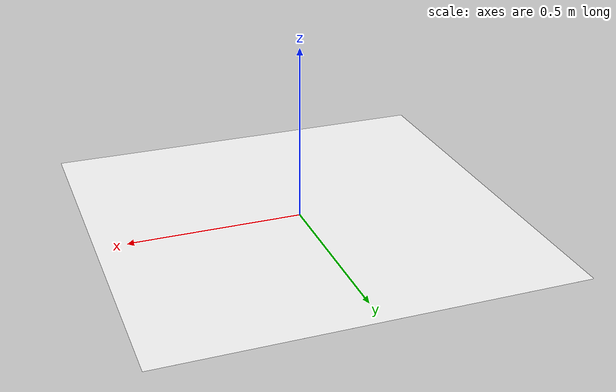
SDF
<?xml version='1.0'?>
<sdf version='1.5'>
  <model name='aruco_visual_marker_0'>

    <link name='marker'>
      <pose frame=''>0 0 0 0 0 0</pose>
      <visual name='visual'>
        <geometry>
          <box>
            <size>1.1778 1.1778 1.1e-5</size>
          </box>
        </geometry>
        <material>
          <script>
            <uri>model://aruco_visual_marker_0/materials/scripts</uri>
            <uri>model://aruco_visual_marker_0/materials/textures</uri>
            <name>ArucoVisualMarker0/Marker</name>
          </script>
          <ambient>1 1 1 1</ambient>
          <diffuse>1 1 1 1</diffuse>
          <specular>0 0 0 1</specular>
          <emissive>1 1 1 0</emissive>
          <shader type='vertex'>
            <normal_map>__default__</normal_map>
          </shader>
        </material>
        <pose frame=''>0 0 0 0 -0 0</pose>
        <cast_shadows>1</cast_shadows>
        <transparency>0</transparency>
      </visual>
      <collision name='collision'>
        <laser_retro>0</laser_retro>
        <max_contacts>10</max_contacts>
        <pose frame=''>0 0 0 0 -0 0</pose>
        <geometry>
          <box>
            <size>1.1778 1.1778 1.1e-05</size>
          </box>
        </geometry>
      </collision>
    </link>

    <static>1</static>

  </model>
</sdf>
